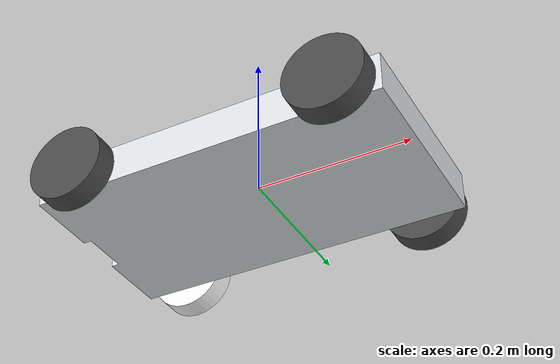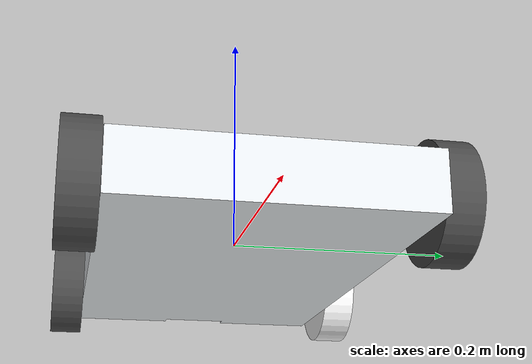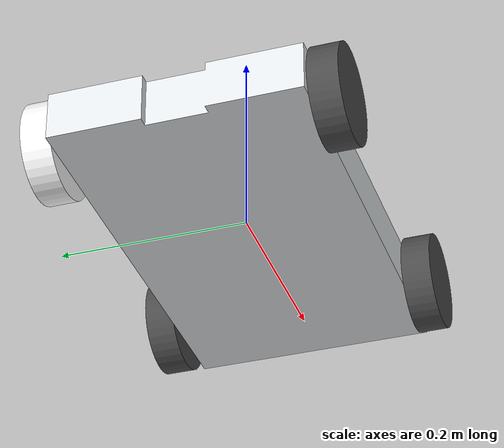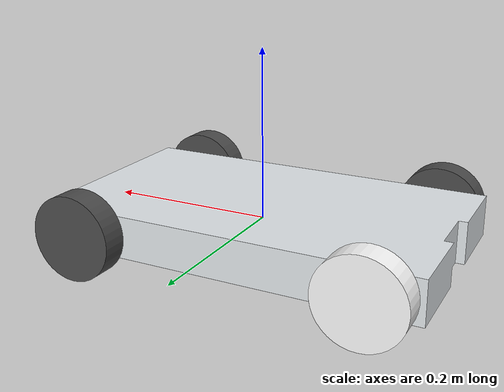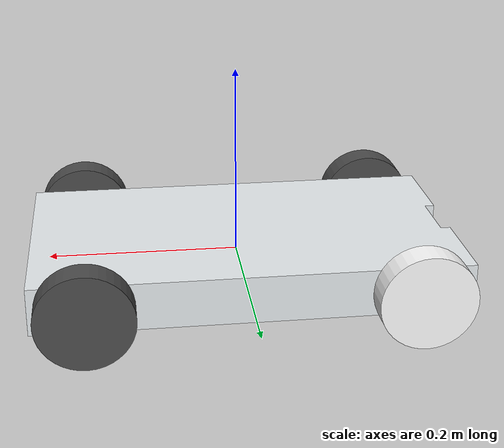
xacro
<?xml version="1.0"?>

<robot name='bot2' xmlns:xacro="http://www.ros.org/wiki/xacro">

    <xacro:include filename = "$(find descriptions_package)/urdf/bot2_ext_info.xacro"/>
    <xacro:include filename = "$(find descriptions_package)/urdf/bot2_control.xacro"/>

    <link name="base_footprint" />
    <link name='base_link'>

        <inertial>
            <origin xyz="-0.00477772041971076 -0.00251785605746587 0.00492196170426952" rpy="0 0 0" />
            <mass value="5.4906967609298" />
            <inertia
                ixx="0.0790182977064169"
                ixy="-8.65517030098536E-17"
                ixz="-1.11100673600689E-17"
                iyy="0.310582068356655"
                iyz="2.10831794527565E-20"
                izz="0.237812017083757" />
        </inertial>

        <visual>
            <origin xyz="0 0 0" rpy="0 0 0" />
            <geometry>
                <mesh filename="package://descriptions_package/meshes/base_link.STL" />
            </geometry>
            <material name="">
                <color rgba="0.898039215686275 0.917647058823529 0.929411764705882 1" />
            </material>
        </visual>
        <collision>
            <origin xyz="0 0 0" rpy="0 0 0" />
            <geometry>
                <mesh filename="package://descriptions_package/meshes/base_link.STL" />
            </geometry>
        </collision>

    </link>

    <joint name="base_joint" type="fixed">
        <parent link="base_footprint" />
        <child link="base_link" />
        <origin rpy="0 0 0" xyz="0 0 0" />
    </joint>

    <link name="front_left_wheel_link">

        <inertial>
            <origin xyz="0 -0.0153766758697323 0" rpy="0 0 0" />
            <mass value="0.240142238343612" />
            <inertia
                ixx="0.000166909128120098"
                ixy="-5.06121841627169E-21"
                ixz="5.11804217673643E-21"
                iyy="0.00029484987262983"
                iyz="-5.52812189115149E-22"
                izz="0.000166909128120098" />
        </inertial>

        <visual>
            <origin xyz="0 0 0" rpy="0 0 0" />
            <geometry>
                <mesh filename="package://descriptions_package/meshes/front_left_wheel_link.STL" />
            </geometry>
            <material name="">
                <color rgba="0.298039215686275 0.298039215686275 0.298039215686275 1" />
            </material>
        </visual>

        <collision>
            <origin xyz="0 0 0" rpy="0 0 0" />
            <geometry>
                <mesh filename="package://descriptions_package/meshes/front_left_wheel_link.STL" />
            </geometry>
        </collision>
    </link>

    <joint name="front_left_wheel_joint" type="continuous">
        <origin xyz="-0.17484 -0.15992 -0.0025179" rpy="0 0 3.1416" />
        <parent link="base_link" />
        <child link="front_left_wheel_link" />
        <axis xyz="0 -1 0" />
        <limit effort="10" velocity="5" />
    </joint>

    <link name="front_right_wheel_link">
        <inertial>
            <origin xyz="0 0.0153766758697323 4.33680868994202E-19" rpy="0 0 0" />
            <mass value="0.240142238343612" />
            <inertia
                ixx="0.000166909128120098"
                ixy="-1.07481224786164E-21"
                ixz="-1.5134854736165E-20"
                iyy="0.00029484987262983"
                iyz="-3.93639005374105E-21"
                izz="0.000166909128120098" />
        </inertial>
        <visual>
            <origin xyz="0 0 0" rpy="0 0 0" />
            <geometry>
                <mesh filename="package://descriptions_package/meshes/rear_right_wheel_link.STL" />
            </geometry>
            <material name="">
                <color rgba="1 1 1 1" />
            </material>
        </visual>
        <collision>
            <origin xyz="0 0 0" rpy="0 0 0" />
            <geometry>
                <mesh filename="package://descriptions_package/meshes/rear_right_wheel_link.STL" />
            </geometry>
        </collision>
    </link>

    <joint name="front_right_wheel_joint" type="continuous">
        <origin
            xyz="-0.17484 0.15008 -0.0025179"
            rpy="0 0 3.1416" />
        <parent
            link="base_link" />
        <child
            link="front_right_wheel_link" />
        <axis
            xyz="0 -1 0" />
        <limit effort="10" velocity="5" />
    </joint>

    <link
        name="rear_left_wheel_link">
        <inertial>
            <origin
                xyz="0 -0.0153766758697323 0"
                rpy="0 0 0" />
            <mass
                value="0.240142238343612" />
            <inertia
                ixx="0.000166909128120098"
                ixy="1.46545710546565E-21"
                ixz="-3.93555710983136E-37"
                iyy="0.00029484987262983"
                iyz="-7.3468396926393E-37"
                izz="0.000166909128120098" />
        </inertial>
        <visual>
            <origin
                xyz="0 0 0"
                rpy="0 0 0" />
            <geometry>
                <mesh
                    filename="package://descriptions_package/meshes/rear_left_wheel_link.STL" />
            </geometry>
            <material
                name="">
                <color
                    rgba="0.298039215686275 0.298039215686275 0.298039215686275 1" />
            </material>
        </visual>
        <collision>
            <origin
                xyz="0 0 0"
                rpy="0 0 0" />
            <geometry>
                <mesh
                    filename="package://descriptions_package/meshes/rear_left_wheel_link.STL" />
            </geometry>
        </collision>
    </link>
    <joint
        name="rear_left_wheel_joint"
        type="continuous">
        <origin
            xyz="0.16266 -0.15992 -0.0025179"
            rpy="0 0 3.1416" />
        <parent
            link="base_link" />
        <child
            link="rear_left_wheel_link" />
        <axis
            xyz="0 -1 0" />
        <limit effort="10" velocity="5" />
    </joint>
    <link
        name="rear_right_wheel_link">
        <inertial>
            <origin
                xyz="0 0.0153766758697323 4.33680868994202E-19"
                rpy="0 0 0" />
            <mass
                value="0.240142238343612" />
            <inertia
                ixx="0.000166909128120098"
                ixy="-1.07481224786164E-21"
                ixz="-1.5134854736165E-20"
                iyy="0.00029484987262983"
                iyz="-3.93639005374105E-21"
                izz="0.000166909128120098" />
        </inertial>
        <visual>
            <origin
                xyz="0 0 0"
                rpy="0 0 0" />
            <geometry>
                <mesh
                    filename="package://descriptions_package/meshes/rear_right_wheel_link.STL" />
            </geometry>
            <material
                name="">
                <color
                    rgba="0.298039215686275 0.298039215686275 0.298039215686275 1" />
            </material>
        </visual>
        <collision>
            <origin
                xyz="0 0 0"
                rpy="0 0 0" />
            <geometry>
                <mesh
                    filename="package://descriptions_package/meshes/rear_right_wheel_link.STL" />
            </geometry>
        </collision>
    </link>
    <joint
        name="rear_right_wheel_joint"
        type="continuous">
        <origin
            xyz="0.16266 0.15008 -0.0025179"
            rpy="0 0 3.1416" />
        <parent
            link="base_link" />
        <child
            link="rear_right_wheel_link" />
        <axis
            xyz="0 -1 0" />
        <limit effort="10" velocity="5" />
    </joint>

</robot>
